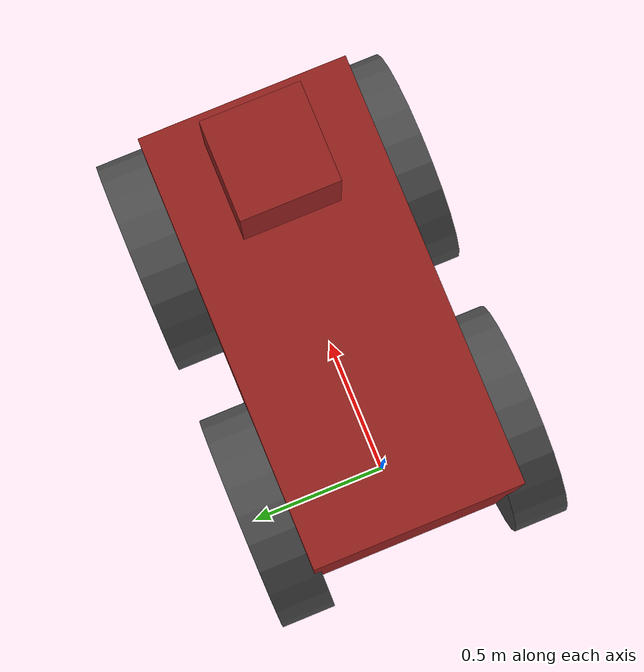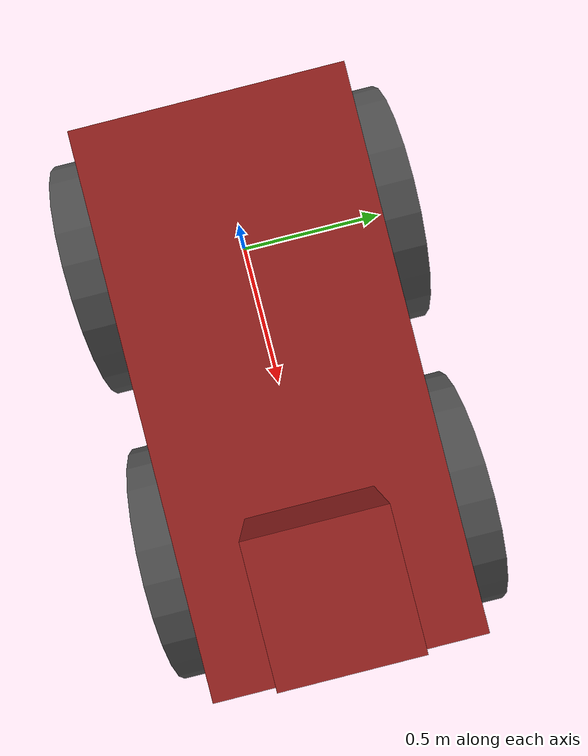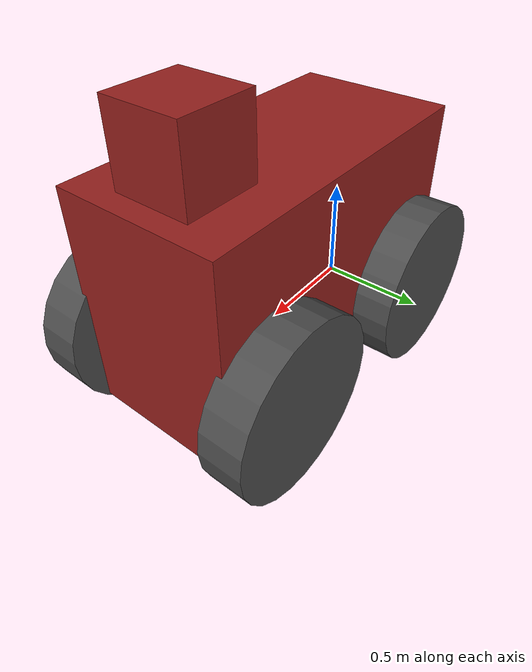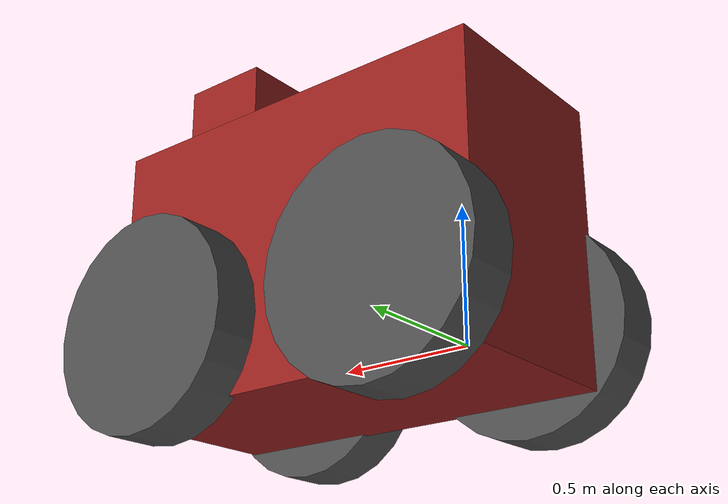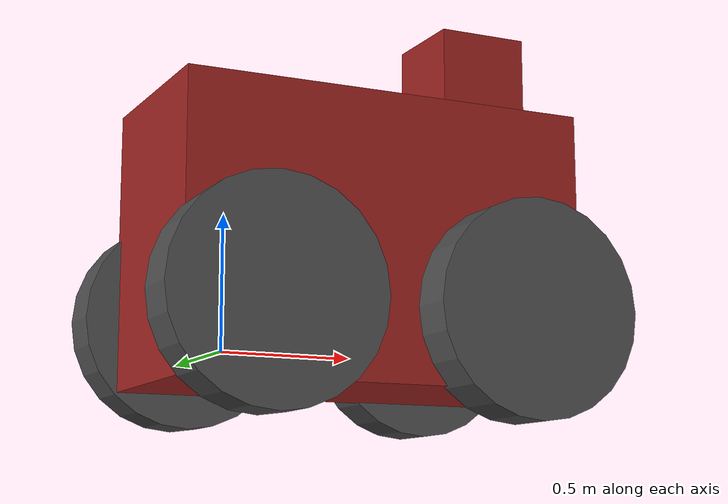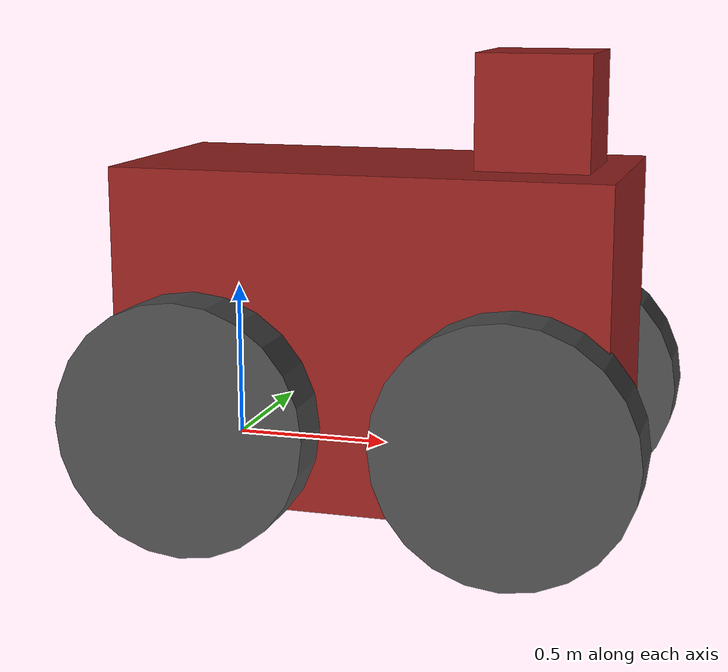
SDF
<?xml version="1.0" ?>
<sdf version="1.8">
    <model name='Flip' canonical_link='chassis'>
        <pose>0 0 0 0 0 0</pose>

        <!-- DiffDrive Plugin for movement -->
        <plugin filename="gz-sim-diff-drive-system" name="gz::sim::systems::DiffDrive">
            <left_joint>firstLeftWheelJoint</left_joint>
            <left_joint>secondLeftWheelJoint</left_joint>
            <left_joint>thirdLeftWheelJoint</left_joint>
            <left_joint>fourthLeftWheelJoint</left_joint>
            <right_joint>firstRightWheelJoint</right_joint>
            <right_joint>secondRightWheelJoint</right_joint>
            <right_joint>thirdRightWheelJoint</right_joint>
            <right_joint>fourthRightWheelJoint</right_joint>
            <wheel_separation>1.7</wheel_separation>
            <wheel_radius>0.4</wheel_radius>
            <odom_publish_frequency>1</odom_publish_frequency>
            <topic>cmd_vel</topic>
        </plugin>

        <!-- Chassis -->
        <link name='chassis'>
            <pose relative_to='__model__'>0.5 0 0.4 0 0 0</pose>
            <inertial>
                <mass>500.0</mass>
                <inertia>
                    <ixx>52.083333</ixx>
                    <ixy>0</ixy>
                    <ixz>0</ixz>
                    <iyy>70.833333</iyy>
                    <iyz>0</iyz>
                    <izz>102.083333</izz>
                </inertia>
            </inertial>
            <visual name='visual'>
                <geometry>
                    <box>
                        <size>1.55 0.75 1.05</size>
                    </box>
                </geometry>
                <material>
                    <ambient>0.4 0.08 0.08 1.0</ambient>
                    <diffuse>0.59 0.13 0.12 1.0</diffuse>
                    <specular>0.1 0.1 0.1 1.0</specular>
                </material>
            </visual>
            <collision name='collision'>
                <geometry>
                    <box>
                        <size>1.55 0.75 1.05</size>
                    </box>
                </geometry>
            </collision>

            <!-- LIDAR SENSOR - SIMPLIFIED FOR macOS -->
            <sensor name='lidar' type='lidar'>
                <pose relative_to='chassis'>0.0 0.0 0.5 0 0 0</pose>
                <topic>lidar</topic>
                <update_rate>10</update_rate>
                <ray>
                    <scan>
                        <horizontal>
                            <samples>1000</samples>
                            <resolution>1</resolution>
                            <min_angle>-3.14159</min_angle>
                            <max_angle>3.14159</max_angle>
                        </horizontal>
                        <vertical>
                            <samples>1</samples>
                            <resolution>0.01</resolution>
                            <min_angle>0</min_angle>
                            <max_angle>0</max_angle>
                        </vertical>
                    </scan>
                    <range>
                        <min>0.08</min>
                        <max>10.0</max>
                        <resolution>0.01</resolution>
                    </range>
                </ray>
                <always_on>1</always_on>
                <visualize>false</visualize>
            </sensor>
        </link>

        <!-- Front block (visual only) -->
        <link name='front_block'>
            <pose relative_to='chassis'>0.50 0 0.70 0 0 0</pose>
            <inertial>
                <mass>0.3</mass>
                <inertia>
                    <ixx>0.01</ixx>
                    <ixy>0</ixy>
                    <ixz>0</ixz>
                    <iyy>0.01</iyy>
                    <iyz>0</iyz>
                    <izz>0.01</izz>
                </inertia>
            </inertial>
            <visual name='visual'>
                <geometry>
                    <box>
                        <size>0.35 0.35 0.35</size>
                    </box>
                </geometry>
                <material>
                    <ambient>0.4 0.08 0.08 1.0</ambient>
                    <diffuse>0.59 0.13 0.12 1.0</diffuse>
                    <specular>0.1 0.1 0.1 1.0</specular>
                </material>
            </visual>
            <collision name='collision'>
                <geometry>
                    <box>
                        <size>0.5 0.5 0.5</size>
                    </box>
                </geometry>
            </collision>
        </link>

        <joint name='front_block_fixed_joint' type='fixed'>
            <parent>chassis</parent>
            <child>front_block</child>
        </joint>

        <!-- Wheels (simplified) -->
        <link name='firstLeftWheel'>
            <pose relative_to="chassis">0.5 0.45 -0.25 -1.5707 0 0</pose>
            <inertial>
                <mass>1</mass>
                <inertia>
                    <ixx>0.043333</ixx>
                    <ixy>0</ixy>
                    <ixz>0</ixz>
                    <iyy>0.043333</iyy>
                    <iyz>0</iyz>
                    <izz>0.08</izz>
                </inertia>
            </inertial>
            <visual name='visual'>
                <geometry>
                    <cylinder>
                        <radius>0.4</radius>
                        <length>0.2</length>
                    </cylinder>
                </geometry>
                <material>
                    <ambient>0.2 0.2 0.2 1.0</ambient>
                    <diffuse>0.3 0.3 0.3 1.0</diffuse>
                </material>
            </visual>
            <collision name='collision'>
                <geometry>
                    <cylinder>
                        <radius>0.4</radius>
                        <length>0.2</length>
                    </cylinder>
                </geometry>
            </collision>
        </link>

        <link name='secondLeftWheel'>
            <pose relative_to="chassis">-0.5 0.45 -0.25 -1.5707 0 0</pose>
            <inertial>
                <mass>1</mass>
                <inertia>
                    <ixx>0.043333</ixx>
                    <ixy>0</ixy>
                    <ixz>0</ixz>
                    <iyy>0.043333</iyy>
                    <iyz>0</iyz>
                    <izz>0.08</izz>
                </inertia>
            </inertial>
            <visual name='visual'>
                <geometry>
                    <cylinder>
                        <radius>0.4</radius>
                        <length>0.2</length>
                    </cylinder>
                </geometry>
                <material>
                    <ambient>0.2 0.2 0.2 1.0</ambient>
                    <diffuse>0.3 0.3 0.3 1.0</diffuse>
                </material>
            </visual>
            <collision name='collision'>
                <geometry>
                    <cylinder>
                        <radius>0.4</radius>
                        <length>0.2</length>
                    </cylinder>
                </geometry>
            </collision>
        </link>

        <link name='thirdLeftWheel'>
            <pose relative_to="chassis">-0.5 -0.45 -0.25 -1.5707 0 0</pose>
            <inertial>
                <mass>1</mass>
                <inertia>
                    <ixx>0.043333</ixx>
                    <ixy>0</ixy>
                    <ixz>0</ixz>
                    <iyy>0.043333</iyy>
                    <iyz>0</iyz>
                    <izz>0.08</izz>
                </inertia>
            </inertial>
            <visual name='visual'>
                <geometry>
                    <cylinder>
                        <radius>0.4</radius>
                        <length>0.2</length>
                    </cylinder>
                </geometry>
                <material>
                    <ambient>0.2 0.2 0.2 1.0</ambient>
                    <diffuse>0.3 0.3 0.3 1.0</diffuse>
                </material>
            </visual>
            <collision name='collision'>
                <geometry>
                    <cylinder>
                        <radius>0.4</radius>
                        <length>0.2</length>
                    </cylinder>
                </geometry>
            </collision>
        </link>

        <link name='fourthLeftWheel'>
            <pose relative_to="chassis">0.5 -0.45 -0.25 -1.5707 0 0</pose>
            <inertial>
                <mass>1</mass>
                <inertia>
                    <ixx>0.043333</ixx>
                    <ixy>0</ixy>
                    <ixz>0</ixz>
                    <iyy>0.043333</iyy>
                    <iyz>0</iyz>
                    <izz>0.08</izz>
                </inertia>
            </inertial>
            <visual name='visual'>
                <geometry>
                    <cylinder>
                        <radius>0.4</radius>
                        <length>0.2</length>
                    </cylinder>
                </geometry>
                <material>
                    <ambient>0.2 0.2 0.2 1.0</ambient>
                    <diffuse>0.3 0.3 0.3 1.0</diffuse>
                </material>
            </visual>
            <collision name='collision'>
                <geometry>
                    <cylinder>
                        <radius>0.4</radius>
                        <length>0.2</length>
                    </cylinder>
                </geometry>
            </collision>
        </link>

        <!-- Right wheels -->
        <link name='firstRightWheel'>
            <pose relative_to="chassis">0.5 0.45 -0.25 -1.5707 0 0</pose>
            <inertial>
                <mass>1</mass>
                <inertia>
                    <ixx>0.043333</ixx>
                    <ixy>0</ixy>
                    <ixz>0</ixz>
                    <iyy>0.043333</iyy>
                    <iyz>0</iyz>
                    <izz>0.08</izz>
                </inertia>
            </inertial>
            <visual name='visual'>
                <geometry>
                    <cylinder>
                        <radius>0.4</radius>
                        <length>0.2</length>
                    </cylinder>
                </geometry>
                <material>
                    <ambient>0.2 0.2 0.2 1.0</ambient>
                    <diffuse>0.3 0.3 0.3 1.0</diffuse>
                </material>
            </visual>
            <collision name='collision'>
                <geometry>
                    <cylinder>
                        <radius>0.4</radius>
                        <length>0.2</length>
                    </cylinder>
                </geometry>
            </collision>
        </link>

        <link name='secondRightWheel'>
            <pose relative_to="chassis">-0.5 0.45 -0.25 -1.5707 0 0</pose>
            <inertial>
                <mass>1</mass>
                <inertia>
                    <ixx>0.043333</ixx>
                    <ixy>0</ixy>
                    <ixz>0</ixz>
                    <iyy>0.043333</iyy>
                    <iyz>0</iyz>
                    <izz>0.08</izz>
                </inertia>
            </inertial>
            <visual name='visual'>
                <geometry>
                    <cylinder>
                        <radius>0.4</radius>
                        <length>0.2</length>
                    </cylinder>
                </geometry>
                <material>
                    <ambient>0.2 0.2 0.2 1.0</ambient>
                    <diffuse>0.3 0.3 0.3 1.0</diffuse>
                </material>
            </visual>
            <collision name='collision'>
                <geometry>
                    <cylinder>
                        <radius>0.4</radius>
                        <length>0.2</length>
                    </cylinder>
                </geometry>
            </collision>
        </link>

        <link name='thirdRightWheel'>
            <pose relative_to="chassis">-0.5 -0.45 -0.25 -1.5707 0 0</pose>
            <inertial>
                <mass>1</mass>
                <inertia>
                    <ixx>0.043333</ixx>
                    <ixy>0</ixy>
                    <ixz>0</ixz>
                    <iyy>0.043333</iyy>
                    <iyz>0</iyz>
                    <izz>0.08</izz>
                </inertia>
            </inertial>
            <visual name='visual'>
                <geometry>
                    <cylinder>
                        <radius>0.4</radius>
                        <length>0.2</length>
                    </cylinder>
                </geometry>
                <material>
                    <ambient>0.2 0.2 0.2 1.0</ambient>
                    <diffuse>0.3 0.3 0.3 1.0</diffuse>
                </material>
            </visual>
            <collision name='collision'>
                <geometry>
                    <cylinder>
                        <radius>0.4</radius>
                        <length>0.2</length>
                    </cylinder>
                </geometry>
            </collision>
        </link>

        <link name='fourthRightWheel'>
            <pose relative_to="chassis">0.5 -0.45 -0.25 -1.5707 0 0</pose>
            <inertial>
                <mass>1</mass>
                <inertia>
                    <ixx>0.043333</ixx>
                    <ixy>0</ixy>
                    <ixz>0</ixz>
                    <iyy>0.043333</iyy>
                    <iyz>0</iyz>
                    <izz>0.08</izz>
                </inertia>
            </inertial>
            <visual name='visual'>
                <geometry>
                    <cylinder>
                        <radius>0.4</radius>
                        <length>0.2</length>
                    </cylinder>
                </geometry>
                <material>
                    <ambient>0.2 0.2 0.2 1.0</ambient>
                    <diffuse>0.3 0.3 0.3 1.0</diffuse>
                </material>
            </visual>
            <collision name='collision'>
                <geometry>
                    <cylinder>
                        <radius>0.4</radius>
                        <length>0.2</length>
                    </cylinder>
                </geometry>
            </collision>
        </link>

        <!-- Wheel Joints -->
        <joint name='firstLeftWheelJoint' type='revolute'>
            <pose relative_to='firstLeftWheel'/>
            <parent>chassis</parent>
            <child>firstLeftWheel</child>
            <axis>
                <xyz expressed_in='__model__'>0 1 0</xyz>
                <limit>
                    <lower>-1.79769e+308</lower>
                    <upper>1.79769e+308</upper>
                </limit>
            </axis>
        </joint>

        <joint name='secondLeftWheelJoint' type='revolute'>
            <pose relative_to='secondLeftWheel'/>
            <parent>chassis</parent>
            <child>secondLeftWheel</child>
            <axis>
                <xyz expressed_in='__model__'>0 1 0</xyz>
                <limit>
                    <lower>-1.79769e+308</lower>
                    <upper>1.79769e+308</upper>
                </limit>
            </axis>
        </joint>

        <joint name='thirdLeftWheelJoint' type='revolute'>
            <pose relative_to='thirdLeftWheel'/>
            <parent>chassis</parent>
            <child>thirdLeftWheel</child>
            <axis>
                <xyz expressed_in='__model__'>0 1 0</xyz>
                <limit>
                    <lower>-1.79769e+308</lower>
                    <upper>1.79769e+308</upper>
                </limit>
            </axis>
        </joint>

        <joint name='fourthLeftWheelJoint' type='revolute'>
            <pose relative_to='fourthLeftWheel'/>
            <parent>chassis</parent>
            <child>fourthLeftWheel</child>
            <axis>
                <xyz expressed_in='__model__'>0 1 0</xyz>
                <limit>
                    <lower>-1.79769e+308</lower>
                    <upper>1.79769e+308</upper>
                </limit>
            </axis>
        </joint>

        <joint name='firstRightWheelJoint' type='revolute'>
            <pose relative_to='firstRightWheel'/>
            <parent>chassis</parent>
            <child>firstRightWheel</child>
            <axis>
                <xyz expressed_in='__model__'>0 1 0</xyz>
                <limit>
                    <lower>-1.79769e+308</lower>
                    <upper>1.79769e+308</upper>
                </limit>
            </axis>
        </joint>

        <joint name='secondRightWheelJoint' type='revolute'>
            <pose relative_to='secondRightWheel'/>
            <parent>chassis</parent>
            <child>secondRightWheel</child>
            <axis>
                <xyz expressed_in='__model__'>0 1 0</xyz>
                <limit>
                    <lower>-1.79769e+308</lower>
                    <upper>1.79769e+308</upper>
                </limit>
            </axis>
        </joint>

        <joint name='thirdRightWheelJoint' type='revolute'>
            <pose relative_to='thirdRightWheel'/>
            <parent>chassis</parent>
            <child>thirdRightWheel</child>
            <axis>
                <xyz expressed_in='__model__'>0 1 0</xyz>
                <limit>
                    <lower>-1.79769e+308</lower>
                    <upper>1.79769e+308</upper>
                </limit>
            </axis>
        </joint>

        <joint name='fourthRightWheelJoint' type='revolute'>
            <pose relative_to='fourthRightWheel'/>
            <parent>chassis</parent>
            <child>fourthRightWheel</child>
            <axis>
                <xyz expressed_in='__model__'>0 1 0</xyz>
                <limit>
                    <lower>-1.79769e+308</lower>
                    <upper>1.79769e+308</upper>
                </limit>
            </axis>
        </joint>
    </model>
</sdf>
